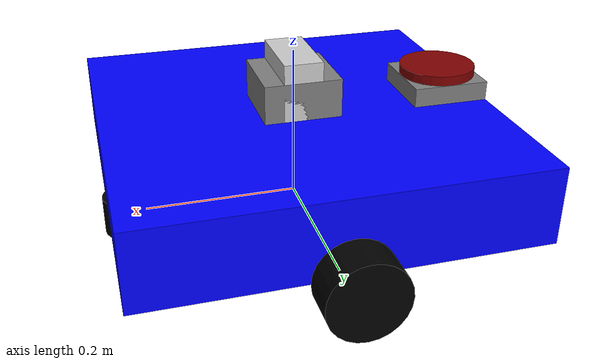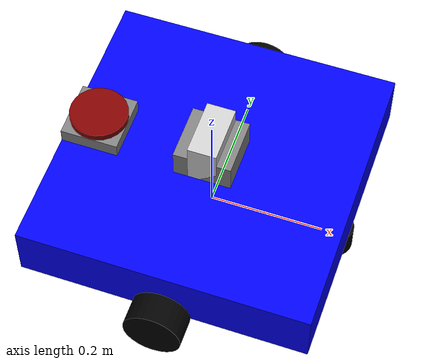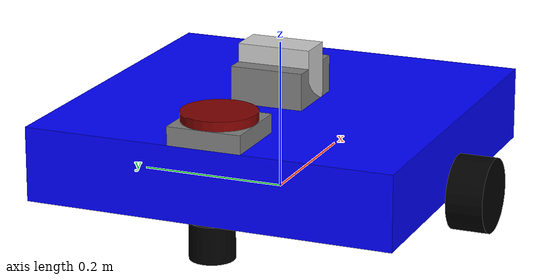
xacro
<?xml version="1.0"?>

<robot name="hitech_robot" xmlns:xacro="http://www.ros.org/wiki/xacro">
  <xacro:include filename="$(find hitech_robot_description)/urdf/velocity_control_gazebo.xacro"/>

  <link name="base_footprint">
  </link>

  <!-- Robot Base Link (Root Link) -->
  <link name="base_link">
    <visual>
      <geometry>
          <box size="0.5 0.5 0.1"/>
      </geometry>
      <material name="blue">
        <color rgba="0 0 1 1"/> <!-- Blue Color -->
      </material>
    </visual>
    <collision>
      <geometry>
          <box size="0.5 0.5 0.1"/>
      </geometry>
    </collision>
  </link>

  <joint name="base_joint" type="fixed">
    <parent link="base_footprint"/>
    <child link="base_link" />
    <origin xyz="0 0 0.075" rpy="0 0 0"/>
  </joint>

  <!-- Left Wheel -->
  <link name="left_wheel">
    <inertial>
      <mass value="0.1" />
      <inertia ixx="0.001" ixy="0.0" ixz="0.0" iyy="0.001" iyz="0.0" izz="0.001"/>
    </inertial>
    <visual>
      <geometry>
        <cylinder radius="0.05" length="0.05"/>
      </geometry>
      <material name="black">
        <color rgba="0 0 0 1"/> <!-- Black Color -->
      </material>
    </visual>
    <collision>
      <geometry>
        <cylinder radius="0.05" length="0.05"/>
      </geometry>
    </collision>
  </link>

  <!-- Right Wheel -->
  <link name="right_wheel">
    <inertial>
      <mass value="0.1" />
      <inertia ixx="0.001" ixy="0.0" ixz="0.0" iyy="0.001" iyz="0.0" izz="0.001"/>
    </inertial>
    <visual>
      <geometry>
        <cylinder radius="0.05" length="0.05"/>
      </geometry>
      <material name="black">
        <color rgba="0 0 0 1"/> <!-- Black Color -->
      </material>
    </visual>
    <collision>
      <geometry>
        <cylinder radius="0.05" length="0.05"/>
      </geometry>
    </collision>
  </link>

  <!-- Camera Mount -->
  <link name="camera_mount">
    <inertial>
      <mass value="0.1" />
      <inertia ixx="0.001" ixy="0.0" ixz="0.0" iyy="0.001" iyz="0.0" izz="0.001"/>
    </inertial>
    <visual>
      <geometry>
        <box size="0.1 0.1 0.05"/>
      </geometry>
      <origin xyz="0 0 0"/>
      <material name="gray">
        <color rgba="0.5 0.5 0.5 1"/> <!-- Gray Color -->
      </material>
    </visual>
    <collision>
      <geometry>
        <box size="0.1 0.1 0.05"/>
      </geometry>
      <origin xyz="0 0 0"/>
    </collision>
  </link>

  <!-- Camera Link -->
  <link name="camera_link">
    <visual>
      <geometry>
        <box size="0.05 0.1 0.1"/>
      </geometry>
      <material name="light_gray">
        <color rgba="0.8 0.8 0.8 1"/> <!-- Light Gray Color -->
      </material>
    </visual>
  </link>

  <!-- Lidar Mount -->
  <link name="lidar_mount">
    <inertial>
      <mass value="0.1" />
      <inertia ixx="0.001" ixy="0.0" ixz="0.0" iyy="0.001" iyz="0.0" izz="0.001"/>
    </inertial>
    <visual>
      <geometry>
        <box size="0.1 0.1 0.025"/>
      </geometry>
      <origin xyz="0 0 0"/>
      <material name="gray">
        <color rgba="0.5 0.5 0.5 1"/> <!-- Gray Color -->
      </material>
    </visual>
    <collision>
      <geometry>
        <box size="0.1 0.1 0.025"/>
      </geometry>
      <origin xyz="0 0 0"/>
    </collision>
  </link>

  <!-- Lidar Link -->
  <link name="lidar_link">
    <visual>
      <geometry>
        <cylinder radius="0.05" length="0.025"/>
      </geometry>
      <material name="light_red">
        <color rgba="0.5 0 0 1"/> <!-- Light red Color -->
      </material>
    </visual>
  </link>

  <!-- Joint: Base to Left Wheel -->
  <joint name="left_wheel_joint" type="continuous">
    <parent link="base_link"/>
    <child link="left_wheel"/>
    <origin xyz="0.0 0.275 -0.05" rpy="1.57 0 0"/> <!-- Positioning and rotating left wheel along the y-axis -->
    <axis xyz="0 0 1"/> <!-- Rotate around the z-axis -->
    <hardwareInterface>hardware_interface/VelocityJointInterface</hardwareInterface>
    <pid p="100" i="0.1" d="1.0" />
  </joint>

  <!-- Joint: Base to Right Wheel -->
  <joint name="right_wheel_joint" type="continuous">
    <parent link="base_link"/>
    <child link="right_wheel"/>
    <origin xyz="0.0 -0.275 -0.05" rpy="1.57 0 0"/> <!-- Positioning and rotating right wheel along the y-axis -->
    <axis xyz="0 0 1"/> <!-- Rotate around the z-axis -->
    <hardwareInterface>hardware_interface/VelocityJointInterface</hardwareInterface>
    <pid p="100" i="0.1" d="1.0" />
  </joint>

  <!-- Joint: Base to Camera Mount (Fixed) -->
  <joint name="camera_mount_joint" type="fixed">
    <parent link="base_link"/>
    <child link="camera_mount"/>
    <origin xyz="0 0 0.075"/> <!-- Positioning the camera mount above the base -->
  </joint>

  <!-- Camera Link to Camera Mount -->
  <joint name="camera_link_joint" type="fixed">
    <parent link="camera_mount"/>
    <child link="camera_link"/>
    <origin xyz="0 0 0"/> <!-- Camera link mounted on the camera mount -->
  </joint>

  <!-- Joint: Base to Lidar Mount (Fixed) -->
  <joint name="lidar_mount_joint" type="fixed">
    <parent link="base_link"/>
    <child link="lidar_mount"/>
    <origin xyz="-0.2 0 0.0625"/> <!-- Positioning the lidar mount above the base -->
  </joint>

  <!-- Camera Link to Camera Mount -->
  <joint name="lidar_link_joint" type="fixed">
    <parent link="lidar_mount"/>
    <child link="lidar_link"/>
    <origin xyz="0 0 0.0125"/> <!-- Camera link mounted on the camera mount -->
  </joint>

  <!-- Depth Camera Sensor -->
  <gazebo reference="camera_link">
    <sensor name="camera_link_depth_camera" type="depth">
      <update_rate>20</update_rate>
      <camera>
        <horizontal_fov>1.047198</horizontal_fov> <!-- 60 degrees FOV -->
        <image>
          <width>640</width>
          <height>480</height>
          <format>R8G8B8</format>
        </image>
        <clip>
          <near>0.05</near>
          <far>3</far>
        </clip>
      </camera>

      <!-- Depth camera plugin for processing -->
      <plugin name="camera_link_depth_controller" filename="libgazebo_ros_openni_kinect.so">
        <baseline>0.2</baseline> <!-- Baseline for stereo camera (if used) -->
        <alwaysOn>true</alwaysOn>
        <updateRate>1.0</updateRate>
        <cameraName>camera_link_ir</cameraName>
        <imageTopicName>/camera_link/color/image_raw</imageTopicName>
        <cameraInfoTopicName>/camera_link/color/camera_info</cameraInfoTopicName>
        <depthImageTopicName>/camera_link/depth/image_raw</depthImageTopicName>
        <depthImageInfoTopicName>/camera_link/depth/camera_info</depthImageInfoTopicName>
        <pointCloudTopicName>/camera_link/depth/points</pointCloudTopicName>
        <frameName>camera_link_frame</frameName>
        <pointCloudCutoff>0.5</pointCloudCutoff> <!-- Minimum distance for point cloud -->
        <pointCloudCutoffMax>3.0</pointCloudCutoffMax> <!-- Max distance for point cloud -->
        <distortionK1>0.00000001</distortionK1>
        <distortionK2>0.00000001</distortionK2>
        <distortionK3>0.00000001</distortionK3>
        <distortionT1>0.00000001</distortionT1>
        <distortionT2>0.00000001</distortionT2>
        <CxPrime>0</CxPrime>
        <Cx>0</Cx>
        <Cy>0</Cy>
        <focalLength>0</focalLength>
        <hackBaseline>0</hackBaseline>
      </plugin>
    </sensor>
  </gazebo>

  <!-- Lidar Sensor attached to the lidar_link -->
  <gazebo reference="lidar_link">
    <sensor type="gpu_ray" name="lidar_sensor">
      <pose>0 0 0 0 0 0</pose>
      <visualize>true</visualize>
      <update_rate>40</update_rate>
      <ray>
        <scan>
          <horizontal>
            <samples>720</samples>
            <resolution>1</resolution>
            <min_angle>-1.570796</min_angle>
            <max_angle>1.570796</max_angle>
          </horizontal>
        </scan>
        <range>
          <min>0.10</min>
          <max>30.0</max>
          <resolution>0.01</resolution>
        </range>
        <noise>
          <type>gaussian</type>
          <mean>0.0</mean>
          <stddev>0.01</stddev>
        </noise>
      </ray>
      <plugin name="gazebo_ros_lidar_controller" filename="libgazebo_ros_gpu_laser.so">
        <topicName>/lidar/scan</topicName>
        <frameName>lidar_link</frameName>
      </plugin>
    </sensor>
  </gazebo>

  <!-- Front Caster Wheel -->
  <link name="front_caster_wheel_link">
    <inertial>
      <mass value="0.1"/>
      <inertia ixx="0.001" ixy="0.0" ixz="0.0" iyy="0.001" iyz="0.0" izz="0.001"/>
    </inertial>
    <visual>
      <geometry>
        <cylinder radius="0.03" length="0.05"/>
      </geometry>
      <material name="black">
        <color rgba="0 0 0 1"/>
      </material>
    </visual>
    <collision>
      <geometry>
        <cylinder radius="0.03" length="0.05"/>
      </geometry>
    </collision>
  </link>

  <!-- Rear Caster Wheel -->
  <link name="rear_caster_wheel_link">
    <inertial>
      <mass value="0.1"/>
      <inertia ixx="0.001" ixy="0.0" ixz="0.0" iyy="0.001" iyz="0.0" izz="0.001"/>
    </inertial>
    <visual>
      <geometry>
        <cylinder radius="0.03" length="0.05"/>
      </geometry>
      <material name="black">
        <color rgba="0 0 0 1"/>
      </material>
    </visual>
    <collision>
      <geometry>
        <cylinder radius="0.03" length="0.05"/>
      </geometry>
    </collision>
  </link>

  <!-- Joint: Base to Front Caster Wheel -->
  <joint name="front_caster_wheel_joint" type="fixed">
    <parent link="base_link"/>
    <child link="front_caster_wheel_link"/>
    <origin xyz="0.225 0 -0.075"/>
    <axis xyz="0 1 0"/>
  </joint>

  <!-- Joint: Base to Rear Caster Wheel -->
  <joint name="rear_caster_wheel_joint" type="fixed">
    <parent link="base_link"/>
    <child link="rear_caster_wheel_link"/>
    <origin xyz="-0.225 0 -0.075"/>
    <axis xyz="0 1 0"/>
  </joint>

</robot>
